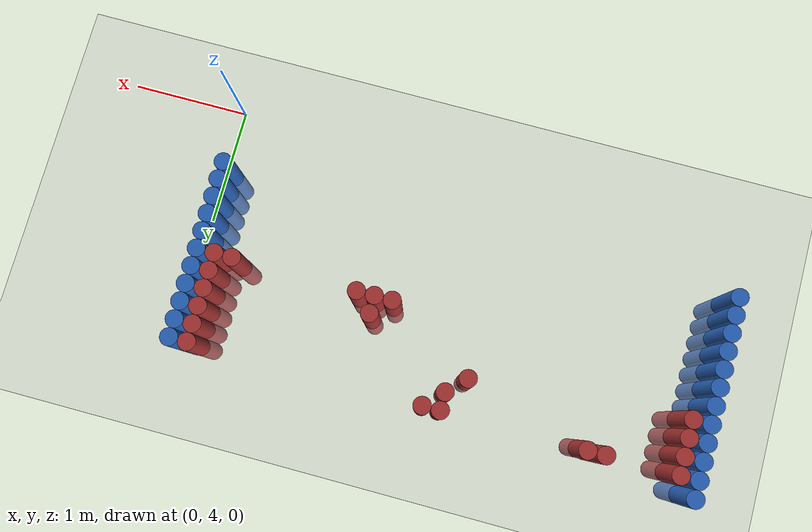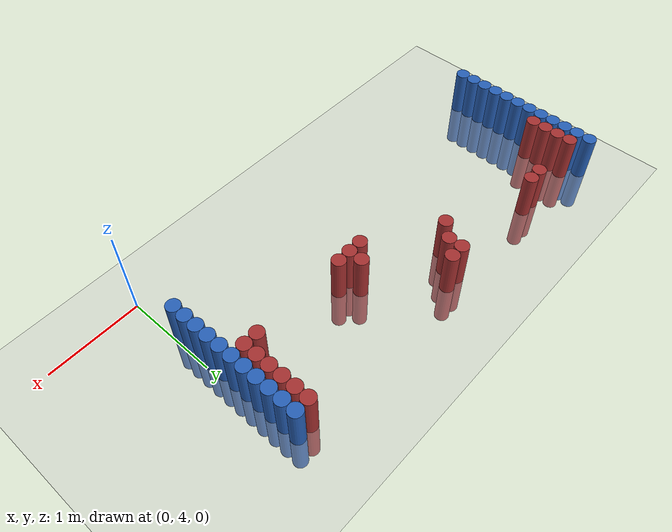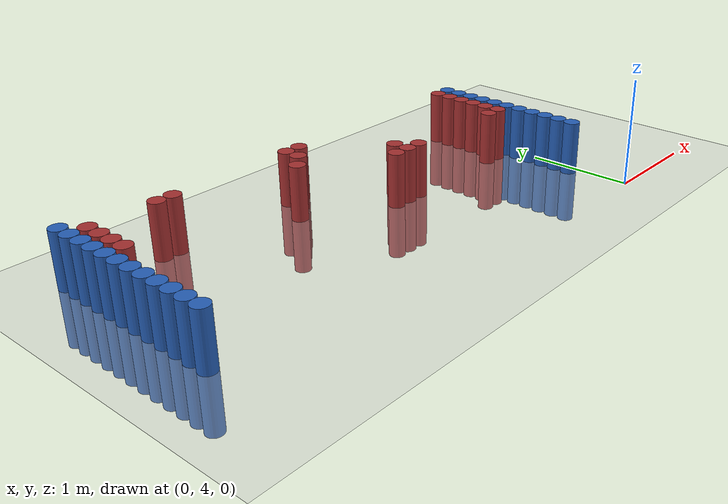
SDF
<sdf version="1.6">
 <world name="default">
  <model name="ground_plane">
   <static>1</static>
   <link name="link">
    <collision name="collision">
     <geometry><plane><normal>0 0 1</normal><size>100 100</size></plane></geometry>
     <surface><friction><ode><mu>100</mu><mu2>50</mu2></ode></friction></surface>
    </collision>
    <visual name="visual">
     <cast_shadows>0</cast_shadows>
     <geometry><plane><normal>0 0 1</normal><size>100 100</size></plane></geometry>
     <material>
      <script><uri>file://media/materials/scripts/gazebo.material</uri><name>Gazebo/Grey</name></script>
     </material>
    </visual>
   </link>
  </model>
  <model name="unit_cylinder_88">
   <static>1</static>
   <pose>-0.075000 4.575000 0.000000 0.000000 0.000000 0.000000</pose>
   <link name="link">
    <inertial>
     <mass>1</mass>
     <inertia><ixx>0.145833</ixx><ixy>0</ixy><ixz>0</ixz><iyy>0.145833</iyy><iyz>0</iyz><izz>0.125</izz></inertia>
    </inertial>
    <collision name="collision">
     <geometry><cylinder><radius>0.075000</radius><length>1</length></cylinder></geometry>
    </collision>
    <visual name="visual">
     <geometry><cylinder><radius>0.075000</radius><length>1</length></cylinder></geometry>
     <material>
      <ambient>0.152000 0.379000 0.720000 1</ambient>
      <diffuse>0.152000 0.379000 0.720000 1</diffuse>
     </material>
     <material>
      <script><name>Gazebo/Grey</name><uri>file://media/materials/scripts/gazebo.material</uri></script>
     </material>
    </visual>
   </link>
  </model>
  <model name="unit_cylinder_89">
   <static>1</static>
   <pose>-4.425000 4.575000 0.000000 0.000000 0.000000 0.000000</pose>
   <link name="link">
    <inertial>
     <mass>1</mass>
     <inertia><ixx>0.145833</ixx><ixy>0</ixy><ixz>0</ixz><iyy>0.145833</iyy><iyz>0</iyz><izz>0.125</izz></inertia>
    </inertial>
    <collision name="collision">
     <geometry><cylinder><radius>0.075000</radius><length>1</length></cylinder></geometry>
    </collision>
    <visual name="visual">
     <geometry><cylinder><radius>0.075000</radius><length>1</length></cylinder></geometry>
     <material>
      <ambient>0.152000 0.379000 0.720000 1</ambient>
      <diffuse>0.152000 0.379000 0.720000 1</diffuse>
     </material>
     <material>
      <script><name>Gazebo/Grey</name><uri>file://media/materials/scripts/gazebo.material</uri></script>
     </material>
    </visual>
   </link>
  </model>
  <model name="unit_cylinder_90">
   <static>1</static>
   <pose>-0.075000 4.725000 0.000000 0.000000 0.000000 0.000000</pose>
   <link name="link">
    <inertial>
     <mass>1</mass>
     <inertia><ixx>0.145833</ixx><ixy>0</ixy><ixz>0</ixz><iyy>0.145833</iyy><iyz>0</iyz><izz>0.125</izz></inertia>
    </inertial>
    <collision name="collision">
     <geometry><cylinder><radius>0.075000</radius><length>1</length></cylinder></geometry>
    </collision>
    <visual name="visual">
     <geometry><cylinder><radius>0.075000</radius><length>1</length></cylinder></geometry>
     <material>
      <ambient>0.152000 0.379000 0.720000 1</ambient>
      <diffuse>0.152000 0.379000 0.720000 1</diffuse>
     </material>
     <material>
      <script><name>Gazebo/Grey</name><uri>file://media/materials/scripts/gazebo.material</uri></script>
     </material>
    </visual>
   </link>
  </model>
  <model name="unit_cylinder_91">
   <static>1</static>
   <pose>-4.425000 4.725000 0.000000 0.000000 0.000000 0.000000</pose>
   <link name="link">
    <inertial>
     <mass>1</mass>
     <inertia><ixx>0.145833</ixx><ixy>0</ixy><ixz>0</ixz><iyy>0.145833</iyy><iyz>0</iyz><izz>0.125</izz></inertia>
    </inertial>
    <collision name="collision">
     <geometry><cylinder><radius>0.075000</radius><length>1</length></cylinder></geometry>
    </collision>
    <visual name="visual">
     <geometry><cylinder><radius>0.075000</radius><length>1</length></cylinder></geometry>
     <material>
      <ambient>0.152000 0.379000 0.720000 1</ambient>
      <diffuse>0.152000 0.379000 0.720000 1</diffuse>
     </material>
     <material>
      <script><name>Gazebo/Grey</name><uri>file://media/materials/scripts/gazebo.material</uri></script>
     </material>
    </visual>
   </link>
  </model>
  <model name="unit_cylinder_92">
   <static>1</static>
   <pose>-0.075000 4.875000 0.000000 0.000000 0.000000 0.000000</pose>
   <link name="link">
    <inertial>
     <mass>1</mass>
     <inertia><ixx>0.145833</ixx><ixy>0</ixy><ixz>0</ixz><iyy>0.145833</iyy><iyz>0</iyz><izz>0.125</izz></inertia>
    </inertial>
    <collision name="collision">
     <geometry><cylinder><radius>0.075000</radius><length>1</length></cylinder></geometry>
    </collision>
    <visual name="visual">
     <geometry><cylinder><radius>0.075000</radius><length>1</length></cylinder></geometry>
     <material>
      <ambient>0.152000 0.379000 0.720000 1</ambient>
      <diffuse>0.152000 0.379000 0.720000 1</diffuse>
     </material>
     <material>
      <script><name>Gazebo/Grey</name><uri>file://media/materials/scripts/gazebo.material</uri></script>
     </material>
    </visual>
   </link>
  </model>
  <model name="unit_cylinder_93">
   <static>1</static>
   <pose>-4.425000 4.875000 0.000000 0.000000 0.000000 0.000000</pose>
   <link name="link">
    <inertial>
     <mass>1</mass>
     <inertia><ixx>0.145833</ixx><ixy>0</ixy><ixz>0</ixz><iyy>0.145833</iyy><iyz>0</iyz><izz>0.125</izz></inertia>
    </inertial>
    <collision name="collision">
     <geometry><cylinder><radius>0.075000</radius><length>1</length></cylinder></geometry>
    </collision>
    <visual name="visual">
     <geometry><cylinder><radius>0.075000</radius><length>1</length></cylinder></geometry>
     <material>
      <ambient>0.152000 0.379000 0.720000 1</ambient>
      <diffuse>0.152000 0.379000 0.720000 1</diffuse>
     </material>
     <material>
      <script><name>Gazebo/Grey</name><uri>file://media/materials/scripts/gazebo.material</uri></script>
     </material>
    </visual>
   </link>
  </model>
  <model name="unit_cylinder_94">
   <static>1</static>
   <pose>-0.075000 5.025000 0.000000 0.000000 0.000000 0.000000</pose>
   <link name="link">
    <inertial>
     <mass>1</mass>
     <inertia><ixx>0.145833</ixx><ixy>0</ixy><ixz>0</ixz><iyy>0.145833</iyy><iyz>0</iyz><izz>0.125</izz></inertia>
    </inertial>
    <collision name="collision">
     <geometry><cylinder><radius>0.075000</radius><length>1</length></cylinder></geometry>
    </collision>
    <visual name="visual">
     <geometry><cylinder><radius>0.075000</radius><length>1</length></cylinder></geometry>
     <material>
      <ambient>0.152000 0.379000 0.720000 1</ambient>
      <diffuse>0.152000 0.379000 0.720000 1</diffuse>
     </material>
     <material>
      <script><name>Gazebo/Grey</name><uri>file://media/materials/scripts/gazebo.material</uri></script>
     </material>
    </visual>
   </link>
  </model>
  <model name="unit_cylinder_95">
   <static>1</static>
   <pose>-4.425000 5.025000 0.000000 0.000000 0.000000 0.000000</pose>
   <link name="link">
    <inertial>
     <mass>1</mass>
     <inertia><ixx>0.145833</ixx><ixy>0</ixy><ixz>0</ixz><iyy>0.145833</iyy><iyz>0</iyz><izz>0.125</izz></inertia>
    </inertial>
    <collision name="collision">
     <geometry><cylinder><radius>0.075000</radius><length>1</length></cylinder></geometry>
    </collision>
    <visual name="visual">
     <geometry><cylinder><radius>0.075000</radius><length>1</length></cylinder></geometry>
     <material>
      <ambient>0.152000 0.379000 0.720000 1</ambient>
      <diffuse>0.152000 0.379000 0.720000 1</diffuse>
     </material>
     <material>
      <script><name>Gazebo/Grey</name><uri>file://media/materials/scripts/gazebo.material</uri></script>
     </material>
    </visual>
   </link>
  </model>
  <model name="unit_cylinder_96">
   <static>1</static>
   <pose>-4.425000 5.175000 0.000000 0.000000 0.000000 0.000000</pose>
   <link name="link">
    <inertial>
     <mass>1</mass>
     <inertia><ixx>0.145833</ixx><ixy>0</ixy><ixz>0</ixz><iyy>0.145833</iyy><iyz>0</iyz><izz>0.125</izz></inertia>
    </inertial>
    <collision name="collision">
     <geometry><cylinder><radius>0.075000</radius><length>1</length></cylinder></geometry>
    </collision>
    <visual name="visual">
     <geometry><cylinder><radius>0.075000</radius><length>1</length></cylinder></geometry>
     <material>
      <ambient>0.152000 0.379000 0.720000 1</ambient>
      <diffuse>0.152000 0.379000 0.720000 1</diffuse>
     </material>
     <material>
      <script><name>Gazebo/Grey</name><uri>file://media/materials/scripts/gazebo.material</uri></script>
     </material>
    </visual>
   </link>
  </model>
  <model name="unit_cylinder_97">
   <static>1</static>
   <pose>-4.425000 5.325000 0.000000 0.000000 0.000000 0.000000</pose>
   <link name="link">
    <inertial>
     <mass>1</mass>
     <inertia><ixx>0.145833</ixx><ixy>0</ixy><ixz>0</ixz><iyy>0.145833</iyy><iyz>0</iyz><izz>0.125</izz></inertia>
    </inertial>
    <collision name="collision">
     <geometry><cylinder><radius>0.075000</radius><length>1</length></cylinder></geometry>
    </collision>
    <visual name="visual">
     <geometry><cylinder><radius>0.075000</radius><length>1</length></cylinder></geometry>
     <material>
      <ambient>0.152000 0.379000 0.720000 1</ambient>
      <diffuse>0.152000 0.379000 0.720000 1</diffuse>
     </material>
     <material>
      <script><name>Gazebo/Grey</name><uri>file://media/materials/scripts/gazebo.material</uri></script>
     </material>
    </visual>
   </link>
  </model>
  <model name="unit_cylinder_98">
   <static>1</static>
   <pose>-4.425000 5.475000 0.000000 0.000000 0.000000 0.000000</pose>
   <link name="link">
    <inertial>
     <mass>1</mass>
     <inertia><ixx>0.145833</ixx><ixy>0</ixy><ixz>0</ixz><iyy>0.145833</iyy><iyz>0</iyz><izz>0.125</izz></inertia>
    </inertial>
    <collision name="collision">
     <geometry><cylinder><radius>0.075000</radius><length>1</length></cylinder></geometry>
    </collision>
    <visual name="visual">
     <geometry><cylinder><radius>0.075000</radius><length>1</length></cylinder></geometry>
     <material>
      <ambient>0.152000 0.379000 0.720000 1</ambient>
      <diffuse>0.152000 0.379000 0.720000 1</diffuse>
     </material>
     <material>
      <script><name>Gazebo/Grey</name><uri>file://media/materials/scripts/gazebo.material</uri></script>
     </material>
    </visual>
   </link>
  </model>
  <model name="unit_cylinder_99">
   <static>1</static>
   <pose>-4.425000 5.625000 0.000000 0.000000 0.000000 0.000000</pose>
   <link name="link">
    <inertial>
     <mass>1</mass>
     <inertia><ixx>0.145833</ixx><ixy>0</ixy><ixz>0</ixz><iyy>0.145833</iyy><iyz>0</iyz><izz>0.125</izz></inertia>
    </inertial>
    <collision name="collision">
     <geometry><cylinder><radius>0.075000</radius><length>1</length></cylinder></geometry>
    </collision>
    <visual name="visual">
     <geometry><cylinder><radius>0.075000</radius><length>1</length></cylinder></geometry>
     <material>
      <ambient>0.152000 0.379000 0.720000 1</ambient>
      <diffuse>0.152000 0.379000 0.720000 1</diffuse>
     </material>
     <material>
      <script><name>Gazebo/Grey</name><uri>file://media/materials/scripts/gazebo.material</uri></script>
     </material>
    </visual>
   </link>
  </model>
  <model name="unit_cylinder_100">
   <static>1</static>
   <pose>-4.425000 5.775000 0.000000 0.000000 0.000000 0.000000</pose>
   <link name="link">
    <inertial>
     <mass>1</mass>
     <inertia><ixx>0.145833</ixx><ixy>0</ixy><ixz>0</ixz><iyy>0.145833</iyy><iyz>0</iyz><izz>0.125</izz></inertia>
    </inertial>
    <collision name="collision">
     <geometry><cylinder><radius>0.075000</radius><length>1</length></cylinder></geometry>
    </collision>
    <visual name="visual">
     <geometry><cylinder><radius>0.075000</radius><length>1</length></cylinder></geometry>
     <material>
      <ambient>0.152000 0.379000 0.720000 1</ambient>
      <diffuse>0.152000 0.379000 0.720000 1</diffuse>
     </material>
     <material>
      <script><name>Gazebo/Grey</name><uri>file://media/materials/scripts/gazebo.material</uri></script>
     </material>
    </visual>
   </link>
  </model>
  <model name="unit_cylinder_101">
   <static>1</static>
   <pose>-4.425000 5.925000 0.000000 0.000000 0.000000 0.000000</pose>
   <link name="link">
    <inertial>
     <mass>1</mass>
     <inertia><ixx>0.145833</ixx><ixy>0</ixy><ixz>0</ixz><iyy>0.145833</iyy><iyz>0</iyz><izz>0.125</izz></inertia>
    </inertial>
    <collision name="collision">
     <geometry><cylinder><radius>0.075000</radius><length>1</length></cylinder></geometry>
    </collision>
    <visual name="visual">
     <geometry><cylinder><radius>0.075000</radius><length>1</length></cylinder></geometry>
     <material>
      <ambient>0.152000 0.379000 0.720000 1</ambient>
      <diffuse>0.152000 0.379000 0.720000 1</diffuse>
     </material>
     <material>
      <script><name>Gazebo/Grey</name><uri>file://media/materials/scripts/gazebo.material</uri></script>
     </material>
    </visual>
   </link>
  </model>
  <model name="unit_cylinder_102">
   <static>1</static>
   <pose>-4.425000 6.075000 0.000000 0.000000 0.000000 0.000000</pose>
   <link name="link">
    <inertial>
     <mass>1</mass>
     <inertia><ixx>0.145833</ixx><ixy>0</ixy><ixz>0</ixz><iyy>0.145833</iyy><iyz>0</iyz><izz>0.125</izz></inertia>
    </inertial>
    <collision name="collision">
     <geometry><cylinder><radius>0.075000</radius><length>1</length></cylinder></geometry>
    </collision>
    <visual name="visual">
     <geometry><cylinder><radius>0.075000</radius><length>1</length></cylinder></geometry>
     <material>
      <ambient>0.152000 0.379000 0.720000 1</ambient>
      <diffuse>0.152000 0.379000 0.720000 1</diffuse>
     </material>
     <material>
      <script><name>Gazebo/Grey</name><uri>file://media/materials/scripts/gazebo.material</uri></script>
     </material>
    </visual>
   </link>
  </model>
  <model name="unit_cylinder_103">
   <static>1</static>
   <pose>-4.425000 6.225000 0.000000 0.000000 0.000000 0.000000</pose>
   <link name="link">
    <inertial>
     <mass>1</mass>
     <inertia><ixx>0.145833</ixx><ixy>0</ixy><ixz>0</ixz><iyy>0.145833</iyy><iyz>0</iyz><izz>0.125</izz></inertia>
    </inertial>
    <collision name="collision">
     <geometry><cylinder><radius>0.075000</radius><length>1</length></cylinder></geometry>
    </collision>
    <visual name="visual">
     <geometry><cylinder><radius>0.075000</radius><length>1</length></cylinder></geometry>
     <material>
      <ambient>0.152000 0.379000 0.720000 1</ambient>
      <diffuse>0.152000 0.379000 0.720000 1</diffuse>
     </material>
     <material>
      <script><name>Gazebo/Grey</name><uri>file://media/materials/scripts/gazebo.material</uri></script>
     </material>
    </visual>
   </link>
  </model>
  <model name="unit_cylinder_126">
   <static>1</static>
   <pose>-4.275000 5.625000 0.000000 0.000000 0.000000 0.000000</pose>
   <link name="link">
    <inertial>
     <mass>1</mass>
     <inertia><ixx>0.145833</ixx><ixy>0</ixy><ixz>0</ixz><iyy>0.145833</iyy><iyz>0</iyz><izz>0.125</izz></inertia>
    </inertial>
    <collision name="collision">
     <geometry><cylinder><radius>0.075000</radius><length>1</length></cylinder></geometry>
    </collision>
    <visual name="visual">
     <geometry><cylinder><radius>0.075000</radius><length>1</length></cylinder></geometry>
     <material>
      <ambient>0.648000 0.192000 0.192000 1</ambient>
      <diffuse>0.648000 0.192000 0.192000 1</diffuse>
     </material>
     <material>
      <script><name>Gazebo/Grey</name><uri>file://media/materials/scripts/gazebo.material</uri></script>
     </material>
    </visual>
   </link>
  </model>
  <model name="unit_cylinder_127">
   <static>1</static>
   <pose>-4.275000 5.775000 0.000000 0.000000 0.000000 0.000000</pose>
   <link name="link">
    <inertial>
     <mass>1</mass>
     <inertia><ixx>0.145833</ixx><ixy>0</ixy><ixz>0</ixz><iyy>0.145833</iyy><iyz>0</iyz><izz>0.125</izz></inertia>
    </inertial>
    <collision name="collision">
     <geometry><cylinder><radius>0.075000</radius><length>1</length></cylinder></geometry>
    </collision>
    <visual name="visual">
     <geometry><cylinder><radius>0.075000</radius><length>1</length></cylinder></geometry>
     <material>
      <ambient>0.648000 0.192000 0.192000 1</ambient>
      <diffuse>0.648000 0.192000 0.192000 1</diffuse>
     </material>
     <material>
      <script><name>Gazebo/Grey</name><uri>file://media/materials/scripts/gazebo.material</uri></script>
     </material>
    </visual>
   </link>
  </model>
  <model name="unit_cylinder_128">
   <static>1</static>
   <pose>-4.275000 5.925000 0.000000 0.000000 0.000000 0.000000</pose>
   <link name="link">
    <inertial>
     <mass>1</mass>
     <inertia><ixx>0.145833</ixx><ixy>0</ixy><ixz>0</ixz><iyy>0.145833</iyy><iyz>0</iyz><izz>0.125</izz></inertia>
    </inertial>
    <collision name="collision">
     <geometry><cylinder><radius>0.075000</radius><length>1</length></cylinder></geometry>
    </collision>
    <visual name="visual">
     <geometry><cylinder><radius>0.075000</radius><length>1</length></cylinder></geometry>
     <material>
      <ambient>0.648000 0.192000 0.192000 1</ambient>
      <diffuse>0.648000 0.192000 0.192000 1</diffuse>
     </material>
     <material>
      <script><name>Gazebo/Grey</name><uri>file://media/materials/scripts/gazebo.material</uri></script>
     </material>
    </visual>
   </link>
  </model>
  <model name="unit_cylinder_129">
   <static>1</static>
   <pose>-4.275000 6.075000 0.000000 0.000000 0.000000 0.000000</pose>
   <link name="link">
    <inertial>
     <mass>1</mass>
     <inertia><ixx>0.145833</ixx><ixy>0</ixy><ixz>0</ixz><iyy>0.145833</iyy><iyz>0</iyz><izz>0.125</izz></inertia>
    </inertial>
    <collision name="collision">
     <geometry><cylinder><radius>0.075000</radius><length>1</length></cylinder></geometry>
    </collision>
    <visual name="visual">
     <geometry><cylinder><radius>0.075000</radius><length>1</length></cylinder></geometry>
     <material>
      <ambient>0.648000 0.192000 0.192000 1</ambient>
      <diffuse>0.648000 0.192000 0.192000 1</diffuse>
     </material>
     <material>
      <script><name>Gazebo/Grey</name><uri>file://media/materials/scripts/gazebo.material</uri></script>
     </material>
    </visual>
   </link>
  </model>
  <model name="unit_cylinder_140">
   <static>1</static>
   <pose>-3.675000 6.075000 0.000000 0.000000 0.000000 0.000000</pose>
   <link name="link">
    <inertial>
     <mass>1</mass>
     <inertia><ixx>0.145833</ixx><ixy>0</ixy><ixz>0</ixz><iyy>0.145833</iyy><iyz>0</iyz><izz>0.125</izz></inertia>
    </inertial>
    <collision name="collision">
     <geometry><cylinder><radius>0.075000</radius><length>1</length></cylinder></geometry>
    </collision>
    <visual name="visual">
     <geometry><cylinder><radius>0.075000</radius><length>1</length></cylinder></geometry>
     <material>
      <ambient>0.648000 0.192000 0.192000 1</ambient>
      <diffuse>0.648000 0.192000 0.192000 1</diffuse>
     </material>
     <material>
      <script><name>Gazebo/Grey</name><uri>file://media/materials/scripts/gazebo.material</uri></script>
     </material>
    </visual>
   </link>
  </model>
  <model name="unit_cylinder_141">
   <static>1</static>
   <pose>-3.525000 6.075000 0.000000 0.000000 0.000000 0.000000</pose>
   <link name="link">
    <inertial>
     <mass>1</mass>
     <inertia><ixx>0.145833</ixx><ixy>0</ixy><ixz>0</ixz><iyy>0.145833</iyy><iyz>0</iyz><izz>0.125</izz></inertia>
    </inertial>
    <collision name="collision">
     <geometry><cylinder><radius>0.075000</radius><length>1</length></cylinder></geometry>
    </collision>
    <visual name="visual">
     <geometry><cylinder><radius>0.075000</radius><length>1</length></cylinder></geometry>
     <material>
      <ambient>0.648000 0.192000 0.192000 1</ambient>
      <diffuse>0.648000 0.192000 0.192000 1</diffuse>
     </material>
     <material>
      <script><name>Gazebo/Grey</name><uri>file://media/materials/scripts/gazebo.material</uri></script>
     </material>
    </visual>
   </link>
  </model>
  <model name="unit_cylinder_147">
   <static>1</static>
   <pose>-2.475000 5.775000 0.000000 0.000000 0.000000 0.000000</pose>
   <link name="link">
    <inertial>
     <mass>1</mass>
     <inertia><ixx>0.145833</ixx><ixy>0</ixy><ixz>0</ixz><iyy>0.145833</iyy><iyz>0</iyz><izz>0.125</izz></inertia>
    </inertial>
    <collision name="collision">
     <geometry><cylinder><radius>0.075000</radius><length>1</length></cylinder></geometry>
    </collision>
    <visual name="visual">
     <geometry><cylinder><radius>0.075000</radius><length>1</length></cylinder></geometry>
     <material>
      <ambient>0.648000 0.192000 0.192000 1</ambient>
      <diffuse>0.648000 0.192000 0.192000 1</diffuse>
     </material>
     <material>
      <script><name>Gazebo/Grey</name><uri>file://media/materials/scripts/gazebo.material</uri></script>
     </material>
    </visual>
   </link>
  </model>
  <model name="unit_cylinder_153">
   <static>1</static>
   <pose>-2.325000 5.925000 0.000000 0.000000 0.000000 0.000000</pose>
   <link name="link">
    <inertial>
     <mass>1</mass>
     <inertia><ixx>0.145833</ixx><ixy>0</ixy><ixz>0</ixz><iyy>0.145833</iyy><iyz>0</iyz><izz>0.125</izz></inertia>
    </inertial>
    <collision name="collision">
     <geometry><cylinder><radius>0.075000</radius><length>1</length></cylinder></geometry>
    </collision>
    <visual name="visual">
     <geometry><cylinder><radius>0.075000</radius><length>1</length></cylinder></geometry>
     <material>
      <ambient>0.648000 0.192000 0.192000 1</ambient>
      <diffuse>0.648000 0.192000 0.192000 1</diffuse>
     </material>
     <material>
      <script><name>Gazebo/Grey</name><uri>file://media/materials/scripts/gazebo.material</uri></script>
     </material>
    </visual>
   </link>
  </model>
  <model name="unit_cylinder_154">
   <static>1</static>
   <pose>-2.325000 6.075000 0.000000 0.000000 0.000000 0.000000</pose>
   <link name="link">
    <inertial>
     <mass>1</mass>
     <inertia><ixx>0.145833</ixx><ixy>0</ixy><ixz>0</ixz><iyy>0.145833</iyy><iyz>0</iyz><izz>0.125</izz></inertia>
    </inertial>
    <collision name="collision">
     <geometry><cylinder><radius>0.075000</radius><length>1</length></cylinder></geometry>
    </collision>
    <visual name="visual">
     <geometry><cylinder><radius>0.075000</radius><length>1</length></cylinder></geometry>
     <material>
      <ambient>0.648000 0.192000 0.192000 1</ambient>
      <diffuse>0.648000 0.192000 0.192000 1</diffuse>
     </material>
     <material>
      <script><name>Gazebo/Grey</name><uri>file://media/materials/scripts/gazebo.material</uri></script>
     </material>
    </visual>
   </link>
  </model>
  <model name="unit_cylinder_158">
   <static>1</static>
   <pose>-2.175000 6.075000 0.000000 0.000000 0.000000 0.000000</pose>
   <link name="link">
    <inertial>
     <mass>1</mass>
     <inertia><ixx>0.145833</ixx><ixy>0</ixy><ixz>0</ixz><iyy>0.145833</iyy><iyz>0</iyz><izz>0.125</izz></inertia>
    </inertial>
    <collision name="collision">
     <geometry><cylinder><radius>0.075000</radius><length>1</length></cylinder></geometry>
    </collision>
    <visual name="visual">
     <geometry><cylinder><radius>0.075000</radius><length>1</length></cylinder></geometry>
     <material>
      <ambient>0.648000 0.192000 0.192000 1</ambient>
      <diffuse>0.648000 0.192000 0.192000 1</diffuse>
     </material>
     <material>
      <script><name>Gazebo/Grey</name><uri>file://media/materials/scripts/gazebo.material</uri></script>
     </material>
    </visual>
   </link>
  </model>
  <model name="unit_cylinder_165">
   <static>1</static>
   <pose>-1.725000 5.325000 0.000000 0.000000 0.000000 0.000000</pose>
   <link name="link">
    <inertial>
     <mass>1</mass>
     <inertia><ixx>0.145833</ixx><ixy>0</ixy><ixz>0</ixz><iyy>0.145833</iyy><iyz>0</iyz><izz>0.125</izz></inertia>
    </inertial>
    <collision name="collision">
     <geometry><cylinder><radius>0.075000</radius><length>1</length></cylinder></geometry>
    </collision>
    <visual name="visual">
     <geometry><cylinder><radius>0.075000</radius><length>1</length></cylinder></geometry>
     <material>
      <ambient>0.648000 0.192000 0.192000 1</ambient>
      <diffuse>0.648000 0.192000 0.192000 1</diffuse>
     </material>
     <material>
      <script><name>Gazebo/Grey</name><uri>file://media/materials/scripts/gazebo.material</uri></script>
     </material>
    </visual>
   </link>
  </model>
  <model name="unit_cylinder_166">
   <static>1</static>
   <pose>-1.575000 5.325000 0.000000 0.000000 0.000000 0.000000</pose>
   <link name="link">
    <inertial>
     <mass>1</mass>
     <inertia><ixx>0.145833</ixx><ixy>0</ixy><ixz>0</ixz><iyy>0.145833</iyy><iyz>0</iyz><izz>0.125</izz></inertia>
    </inertial>
    <collision name="collision">
     <geometry><cylinder><radius>0.075000</radius><length>1</length></cylinder></geometry>
    </collision>
    <visual name="visual">
     <geometry><cylinder><radius>0.075000</radius><length>1</length></cylinder></geometry>
     <material>
      <ambient>0.648000 0.192000 0.192000 1</ambient>
      <diffuse>0.648000 0.192000 0.192000 1</diffuse>
     </material>
     <material>
      <script><name>Gazebo/Grey</name><uri>file://media/materials/scripts/gazebo.material</uri></script>
     </material>
    </visual>
   </link>
  </model>
  <model name="unit_cylinder_167">
   <static>1</static>
   <pose>-1.575000 5.475000 0.000000 0.000000 0.000000 0.000000</pose>
   <link name="link">
    <inertial>
     <mass>1</mass>
     <inertia><ixx>0.145833</ixx><ixy>0</ixy><ixz>0</ixz><iyy>0.145833</iyy><iyz>0</iyz><izz>0.125</izz></inertia>
    </inertial>
    <collision name="collision">
     <geometry><cylinder><radius>0.075000</radius><length>1</length></cylinder></geometry>
    </collision>
    <visual name="visual">
     <geometry><cylinder><radius>0.075000</radius><length>1</length></cylinder></geometry>
     <material>
      <ambient>0.648000 0.192000 0.192000 1</ambient>
      <diffuse>0.648000 0.192000 0.192000 1</diffuse>
     </material>
     <material>
      <script><name>Gazebo/Grey</name><uri>file://media/materials/scripts/gazebo.material</uri></script>
     </material>
    </visual>
   </link>
  </model>
  <model name="unit_cylinder_168">
   <static>1</static>
   <pose>-1.425000 5.325000 0.000000 0.000000 0.000000 0.000000</pose>
   <link name="link">
    <inertial>
     <mass>1</mass>
     <inertia><ixx>0.145833</ixx><ixy>0</ixy><ixz>0</ixz><iyy>0.145833</iyy><iyz>0</iyz><izz>0.125</izz></inertia>
    </inertial>
    <collision name="collision">
     <geometry><cylinder><radius>0.075000</radius><length>1</length></cylinder></geometry>
    </collision>
    <visual name="visual">
     <geometry><cylinder><radius>0.075000</radius><length>1</length></cylinder></geometry>
     <material>
      <ambient>0.648000 0.192000 0.192000 1</ambient>
      <diffuse>0.648000 0.192000 0.192000 1</diffuse>
     </material>
     <material>
      <script><name>Gazebo/Grey</name><uri>file://media/materials/scripts/gazebo.material</uri></script>
     </material>
    </visual>
   </link>
  </model>
  <model name="unit_cylinder_172">
   <static>1</static>
   <pose>-0.375000 5.325000 0.000000 0.000000 0.000000 0.000000</pose>
   <link name="link">
    <inertial>
     <mass>1</mass>
     <inertia><ixx>0.145833</ixx><ixy>0</ixy><ixz>0</ixz><iyy>0.145833</iyy><iyz>0</iyz><izz>0.125</izz></inertia>
    </inertial>
    <collision name="collision">
     <geometry><cylinder><radius>0.075000</radius><length>1</length></cylinder></geometry>
    </collision>
    <visual name="visual">
     <geometry><cylinder><radius>0.075000</radius><length>1</length></cylinder></geometry>
     <material>
      <ambient>0.648000 0.192000 0.192000 1</ambient>
      <diffuse>0.648000 0.192000 0.192000 1</diffuse>
     </material>
     <material>
      <script><name>Gazebo/Grey</name><uri>file://media/materials/scripts/gazebo.material</uri></script>
     </material>
    </visual>
   </link>
  </model>
  <model name="unit_cylinder_174">
   <static>1</static>
   <pose>-0.225000 5.325000 0.000000 0.000000 0.000000 0.000000</pose>
   <link name="link">
    <inertial>
     <mass>1</mass>
     <inertia><ixx>0.145833</ixx><ixy>0</ixy><ixz>0</ixz><iyy>0.145833</iyy><iyz>0</iyz><izz>0.125</izz></inertia>
    </inertial>
    <collision name="collision">
     <geometry><cylinder><radius>0.075000</radius><length>1</length></cylinder></geometry>
    </collision>
    <visual name="visual">
     <geometry><cylinder><radius>0.075000</radius><length>1</length></cylinder></geometry>
     <material>
      <ambient>0.648000 0.192000 0.192000 1</ambient>
      <diffuse>0.648000 0.192000 0.192000 1</diffuse>
     </material>
     <material>
      <script><name>Gazebo/Grey</name><uri>file://media/materials/scripts/gazebo.material</uri></script>
     </material>
    </visual>
   </link>
  </model>
  <model name="unit_cylinder_175">
   <static>1</static>
   <pose>-0.225000 5.475000 0.000000 0.000000 0.000000 0.000000</pose>
   <link name="link">
    <inertial>
     <mass>1</mass>
     <inertia><ixx>0.145833</ixx><ixy>0</ixy><ixz>0</ixz><iyy>0.145833</iyy><iyz>0</iyz><izz>0.125</izz></inertia>
    </inertial>
    <collision name="collision">
     <geometry><cylinder><radius>0.075000</radius><length>1</length></cylinder></geometry>
    </collision>
    <visual name="visual">
     <geometry><cylinder><radius>0.075000</radius><length>1</length></cylinder></geometry>
     <material>
      <ambient>0.648000 0.192000 0.192000 1</ambient>
      <diffuse>0.648000 0.192000 0.192000 1</diffuse>
     </material>
     <material>
      <script><name>Gazebo/Grey</name><uri>file://media/materials/scripts/gazebo.material</uri></script>
     </material>
    </visual>
   </link>
  </model>
  <model name="unit_cylinder_176">
   <static>1</static>
   <pose>-0.225000 5.625000 0.000000 0.000000 0.000000 0.000000</pose>
   <link name="link">
    <inertial>
     <mass>1</mass>
     <inertia><ixx>0.145833</ixx><ixy>0</ixy><ixz>0</ixz><iyy>0.145833</iyy><iyz>0</iyz><izz>0.125</izz></inertia>
    </inertial>
    <collision name="collision">
     <geometry><cylinder><radius>0.075000</radius><length>1</length></cylinder></geometry>
    </collision>
    <visual name="visual">
     <geometry><cylinder><radius>0.075000</radius><length>1</length></cylinder></geometry>
     <material>
      <ambient>0.648000 0.192000 0.192000 1</ambient>
      <diffuse>0.648000 0.192000 0.192000 1</diffuse>
     </material>
     <material>
      <script><name>Gazebo/Grey</name><uri>file://media/materials/scripts/gazebo.material</uri></script>
     </material>
    </visual>
   </link>
  </model>
  <model name="unit_cylinder_177">
   <static>1</static>
   <pose>-0.225000 5.775000 0.000000 0.000000 0.000000 0.000000</pose>
   <link name="link">
    <inertial>
     <mass>1</mass>
     <inertia><ixx>0.145833</ixx><ixy>0</ixy><ixz>0</ixz><iyy>0.145833</iyy><iyz>0</iyz><izz>0.125</izz></inertia>
    </inertial>
    <collision name="collision">
     <geometry><cylinder><radius>0.075000</radius><length>1</length></cylinder></geometry>
    </collision>
    <visual name="visual">
     <geometry><cylinder><radius>0.075000</radius><length>1</length></cylinder></geometry>
     <material>
      <ambient>0.648000 0.192000 0.192000 1</ambient>
      <diffuse>0.648000 0.192000 0.192000 1</diffuse>
     </material>
     <material>
      <script><name>Gazebo/Grey</name><uri>file://media/materials/scripts/gazebo.material</uri></script>
     </material>
    </visual>
   </link>
  </model>
  <model name="unit_cylinder_178">
   <static>1</static>
   <pose>-0.225000 5.925000 0.000000 0.000000 0.000000 0.000000</pose>
   <link name="link">
    <inertial>
     <mass>1</mass>
     <inertia><ixx>0.145833</ixx><ixy>0</ixy><ixz>0</ixz><iyy>0.145833</iyy><iyz>0</iyz><izz>0.125</izz></inertia>
    </inertial>
    <collision name="collision">
     <geometry><cylinder><radius>0.075000</radius><length>1</length></cylinder></geometry>
    </collision>
    <visual name="visual">
     <geometry><cylinder><radius>0.075000</radius><length>1</length></cylinder></geometry>
     <material>
      <ambient>0.648000 0.192000 0.192000 1</ambient>
      <diffuse>0.648000 0.192000 0.192000 1</diffuse>
     </material>
     <material>
      <script><name>Gazebo/Grey</name><uri>file://media/materials/scripts/gazebo.material</uri></script>
     </material>
    </visual>
   </link>
  </model>
  <model name="unit_cylinder_179">
   <static>1</static>
   <pose>-0.225000 6.075000 0.000000 0.000000 0.000000 0.000000</pose>
   <link name="link">
    <inertial>
     <mass>1</mass>
     <inertia><ixx>0.145833</ixx><ixy>0</ixy><ixz>0</ixz><iyy>0.145833</iyy><iyz>0</iyz><izz>0.125</izz></inertia>
    </inertial>
    <collision name="collision">
     <geometry><cylinder><radius>0.075000</radius><length>1</length></cylinder></geometry>
    </collision>
    <visual name="visual">
     <geometry><cylinder><radius>0.075000</radius><length>1</length></cylinder></geometry>
     <material>
      <ambient>0.648000 0.192000 0.192000 1</ambient>
      <diffuse>0.648000 0.192000 0.192000 1</diffuse>
     </material>
     <material>
      <script><name>Gazebo/Grey</name><uri>file://media/materials/scripts/gazebo.material</uri></script>
     </material>
    </visual>
   </link>
  </model>
  <model name="unit_cylinder_191">
   <static>1</static>
   <pose>-0.075000 5.175000 0.000000 0.000000 0.000000 0.000000</pose>
   <link name="link">
    <inertial>
     <mass>1</mass>
     <inertia><ixx>0.145833</ixx><ixy>0</ixy><ixz>0</ixz><iyy>0.145833</iyy><iyz>0</iyz><izz>0.125</izz></inertia>
    </inertial>
    <collision name="collision">
     <geometry><cylinder><radius>0.075000</radius><length>1</length></cylinder></geometry>
    </collision>
    <visual name="visual">
     <geometry><cylinder><radius>0.075000</radius><length>1</length></cylinder></geometry>
     <material>
      <ambient>0.152000 0.379000 0.720000 1</ambient>
      <diffuse>0.152000 0.379000 0.720000 1</diffuse>
     </material>
     <material>
      <script><name>Gazebo/Grey</name><uri>file://media/materials/scripts/gazebo.material</uri></script>
     </material>
    </visual>
   </link>
  </model>
  <model name="unit_cylinder_192">
   <static>1</static>
   <pose>-0.075000 5.325000 0.000000 0.000000 0.000000 0.000000</pose>
   <link name="link">
    <inertial>
     <mass>1</mass>
     <inertia><ixx>0.145833</ixx><ixy>0</ixy><ixz>0</ixz><iyy>0.145833</iyy><iyz>0</iyz><izz>0.125</izz></inertia>
    </inertial>
    <collision name="collision">
     <geometry><cylinder><radius>0.075000</radius><length>1</length></cylinder></geometry>
    </collision>
    <visual name="visual">
     <geometry><cylinder><radius>0.075000</radius><length>1</length></cylinder></geometry>
     <material>
      <ambient>0.152000 0.379000 0.720000 1</ambient>
      <diffuse>0.152000 0.379000 0.720000 1</diffuse>
     </material>
     <material>
      <script><name>Gazebo/Grey</name><uri>file://media/materials/scripts/gazebo.material</uri></script>
     </material>
    </visual>
   </link>
  </model>
  <model name="unit_cylinder_193">
   <static>1</static>
   <pose>-0.075000 5.475000 0.000000 0.000000 0.000000 0.000000</pose>
   <link name="link">
    <inertial>
     <mass>1</mass>
     <inertia><ixx>0.145833</ixx><ixy>0</ixy><ixz>0</ixz><iyy>0.145833</iyy><iyz>0</iyz><izz>0.125</izz></inertia>
    </inertial>
    <collision name="collision">
     <geometry><cylinder><radius>0.075000</radius><length>1</length></cylinder></geometry>
    </collision>
    <visual name="visual">
     <geometry><cylinder><radius>0.075000</radius><length>1</length></cylinder></geometry>
     <material>
      <ambient>0.152000 0.379000 0.720000 1</ambient>
      <diffuse>0.152000 0.379000 0.720000 1</diffuse>
     </material>
     <material>
      <script><name>Gazebo/Grey</name><uri>file://media/materials/scripts/gazebo.material</uri></script>
     </material>
    </visual>
   </link>
  </model>
  <model name="unit_cylinder_194">
   <static>1</static>
   <pose>-0.075000 5.625000 0.000000 0.000000 0.000000 0.000000</pose>
   <link name="link">
    <inertial>
     <mass>1</mass>
     <inertia><ixx>0.145833</ixx><ixy>0</ixy><ixz>0</ixz><iyy>0.145833</iyy><iyz>0</iyz><izz>0.125</izz></inertia>
    </inertial>
    <collision name="collision">
     <geometry><cylinder><radius>0.075000</radius><length>1</length></cylinder></geometry>
    </collision>
    <visual name="visual">
     <geometry><cylinder><radius>0.075000</radius><length>1</length></cylinder></geometry>
     <material>
      <ambient>0.152000 0.379000 0.720000 1</ambient>
      <diffuse>0.152000 0.379000 0.720000 1</diffuse>
     </material>
     <material>
      <script><name>Gazebo/Grey</name><uri>file://media/materials/scripts/gazebo.material</uri></script>
     </material>
    </visual>
   </link>
  </model>
  <model name="unit_cylinder_195">
   <static>1</static>
   <pose>-0.075000 5.775000 0.000000 0.000000 0.000000 0.000000</pose>
   <link name="link">
    <inertial>
     <mass>1</mass>
     <inertia><ixx>0.145833</ixx><ixy>0</ixy><ixz>0</ixz><iyy>0.145833</iyy><iyz>0</iyz><izz>0.125</izz></inertia>
    </inertial>
    <collision name="collision">
     <geometry><cylinder><radius>0.075000</radius><length>1</length></cylinder></geometry>
    </collision>
    <visual name="visual">
     <geometry><cylinder><radius>0.075000</radius><length>1</length></cylinder></geometry>
     <material>
      <ambient>0.152000 0.379000 0.720000 1</ambient>
      <diffuse>0.152000 0.379000 0.720000 1</diffuse>
     </material>
     <material>
      <script><name>Gazebo/Grey</name><uri>file://media/materials/scripts/gazebo.material</uri></script>
     </material>
    </visual>
   </link>
  </model>
  <model name="unit_cylinder_196">
   <static>1</static>
   <pose>-0.075000 5.925000 0.000000 0.000000 0.000000 0.000000</pose>
   <link name="link">
    <inertial>
     <mass>1</mass>
     <inertia><ixx>0.145833</ixx><ixy>0</ixy><ixz>0</ixz><iyy>0.145833</iyy><iyz>0</iyz><izz>0.125</izz></inertia>
    </inertial>
    <collision name="collision">
     <geometry><cylinder><radius>0.075000</radius><length>1</length></cylinder></geometry>
    </collision>
    <visual name="visual">
     <geometry><cylinder><radius>0.075000</radius><length>1</length></cylinder></geometry>
     <material>
      <ambient>0.152000 0.379000 0.720000 1</ambient>
      <diffuse>0.152000 0.379000 0.720000 1</diffuse>
     </material>
     <material>
      <script><name>Gazebo/Grey</name><uri>file://media/materials/scripts/gazebo.material</uri></script>
     </material>
    </visual>
   </link>
  </model>
  <model name="unit_cylinder_197">
   <static>1</static>
   <pose>-0.075000 6.075000 0.000000 0.000000 0.000000 0.000000</pose>
   <link name="link">
    <inertial>
     <mass>1</mass>
     <inertia><ixx>0.145833</ixx><ixy>0</ixy><ixz>0</ixz><iyy>0.145833</iyy><iyz>0</iyz><izz>0.125</izz></inertia>
    </inertial>
    <collision name="collision">
     <geometry><cylinder><radius>0.075000</radius><length>1</length></cylinder></geometry>
    </collision>
    <visual name="visual">
     <geometry><cylinder><radius>0.075000</radius><length>1</length></cylinder></geometry>
     <material>
      <ambient>0.152000 0.379000 0.720000 1</ambient>
      <diffuse>0.152000 0.379000 0.720000 1</diffuse>
     </material>
     <material>
      <script><name>Gazebo/Grey</name><uri>file://media/materials/scripts/gazebo.material</uri></script>
     </material>
    </visual>
   </link>
  </model>
 </world>
</sdf>
